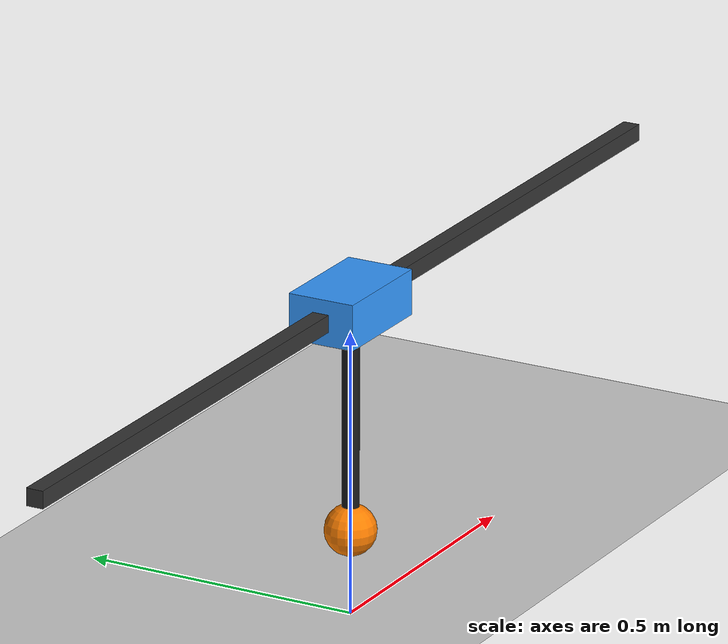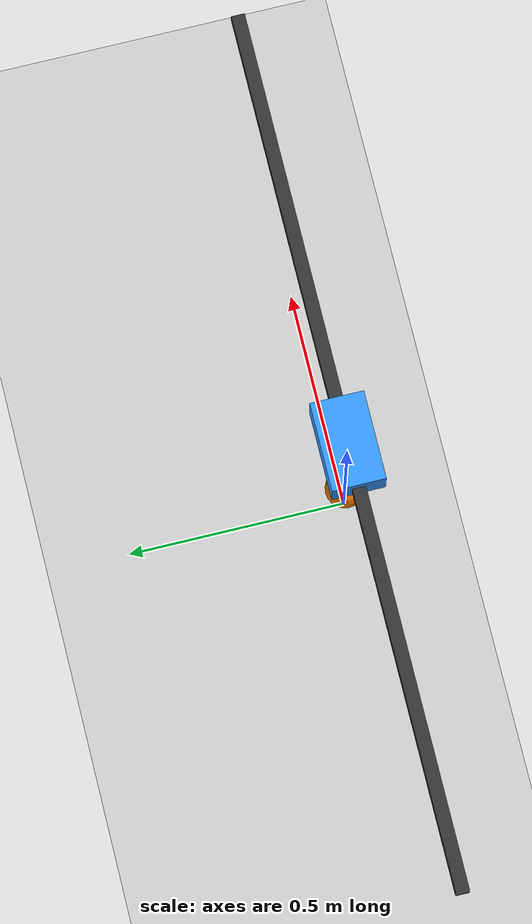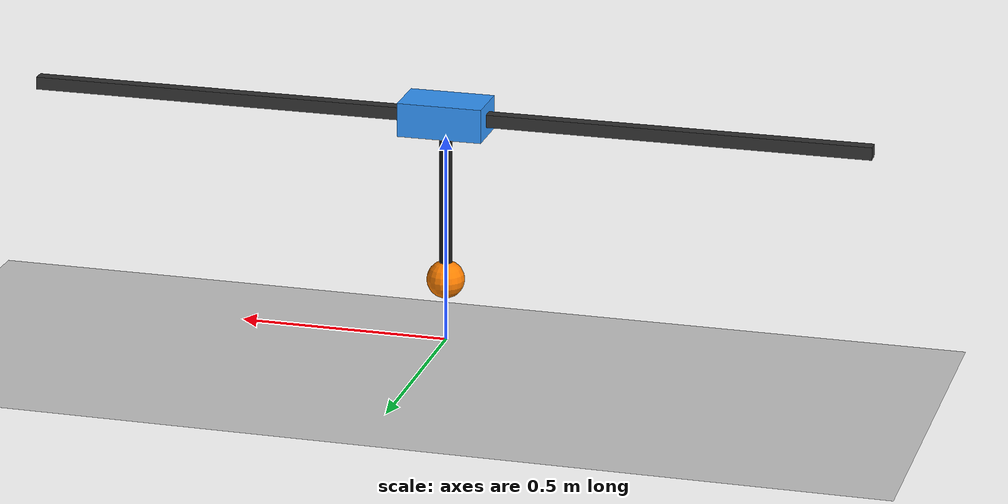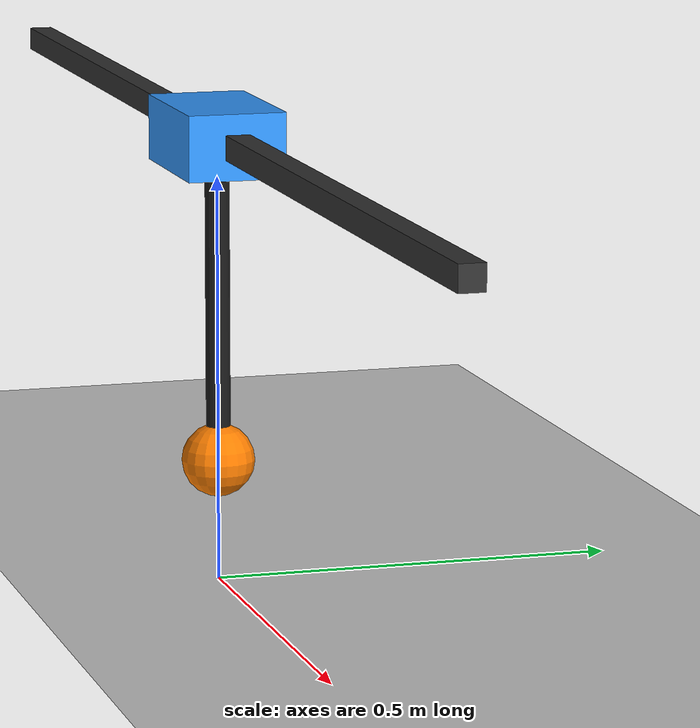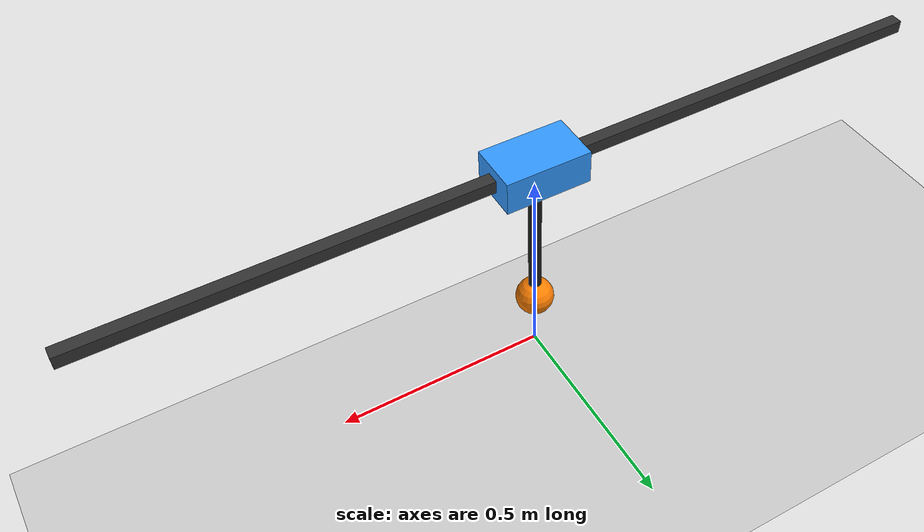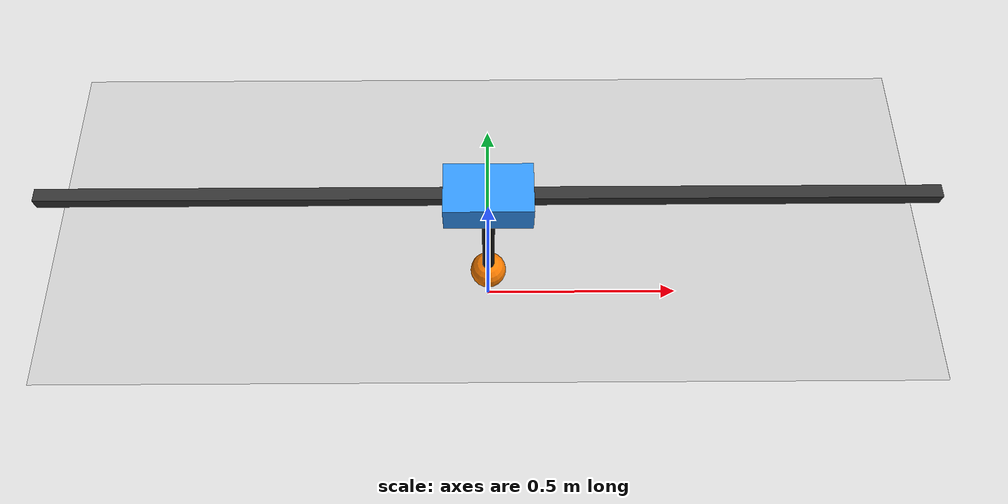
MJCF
<mujoco model="cart_pole_balance">
  <compiler angle="degree"/>

  <option timestep="0.002" gravity="0 0 -9.81"/>

  <default>
    <joint damping="0.01"/>
    <geom friction="1 0.005 0.0001"/>
  </default>

  <worldbody>
    <light pos="0 0 3" dir="0 0 -1"/>

    <geom
      name="ground"
      type="plane"
      size="2 2 0.1"
      rgba="0.8 0.8 0.8 1"/>

    <geom
      name="rail"
      type="box"
      pos="0 0 0.55"
      size="1.0 0.015 0.015"
      rgba="0.2 0.2 0.2 1"
      contype="0"
      conaffinity="0"/>

    <body name="cart" pos="0 0 0.55">
      <joint
        name="cart_slide_x"
        type="slide"
        axis="1 0 0"
        limited="true"
        range="-1.8 1.8"
        damping="0.12"/>

      <geom
        name="cart_geom"
        type="box"
        size="0.10 0.06 0.04"
        mass="1.0"
        rgba="0.2 0.6 1 1"
        contype="0"
        conaffinity="0"/>

      <site
        name="pivot_site"
        pos="0 0 0"
        size="0.025"
        rgba="1 0 0 1"/>

      <body name="rod" pos="0 0 0">
        <joint
          name="rod_hinge_y"
          type="hinge"
          axis="0 1 0"
          damping="0.004"
          armature="0.001"/>

        <geom
          name="rod_geom"
          type="capsule"
          fromto="0 0 0  0 0 -0.40"
          size="0.015"
          mass="0.05"
          rgba="0.1 0.1 0.1 1"/>

        <geom
          name="ball_geom"
          type="sphere"
          pos="0 0 -0.40"
          size="0.045"
          mass="0.15"
          rgba="1 0.5 0 1"/>

        <site
          name="ball_site"
          pos="0 0 -0.40"
          size="0.025"
          rgba="0 1 0 1"/>
      </body>
    </body>
  </worldbody>

  <actuator>
    <motor
      name="cart_motor"
      joint="cart_slide_x"
      gear="1"
      ctrllimited="true"
      ctrlrange="-30 30"/>
  </actuator>
</mujoco>
